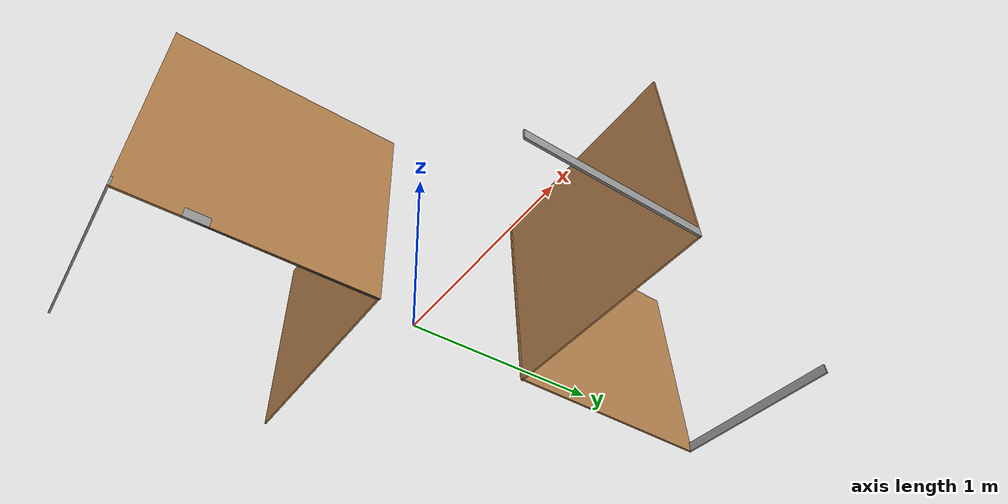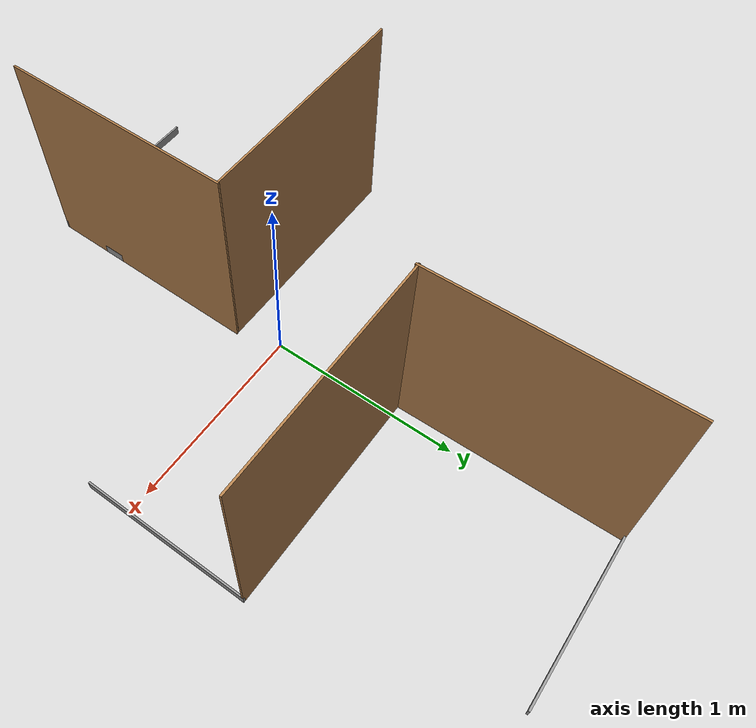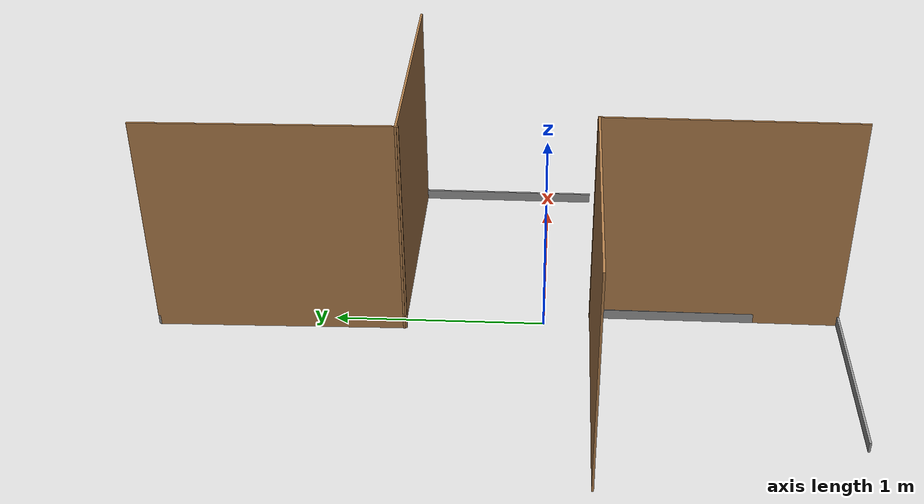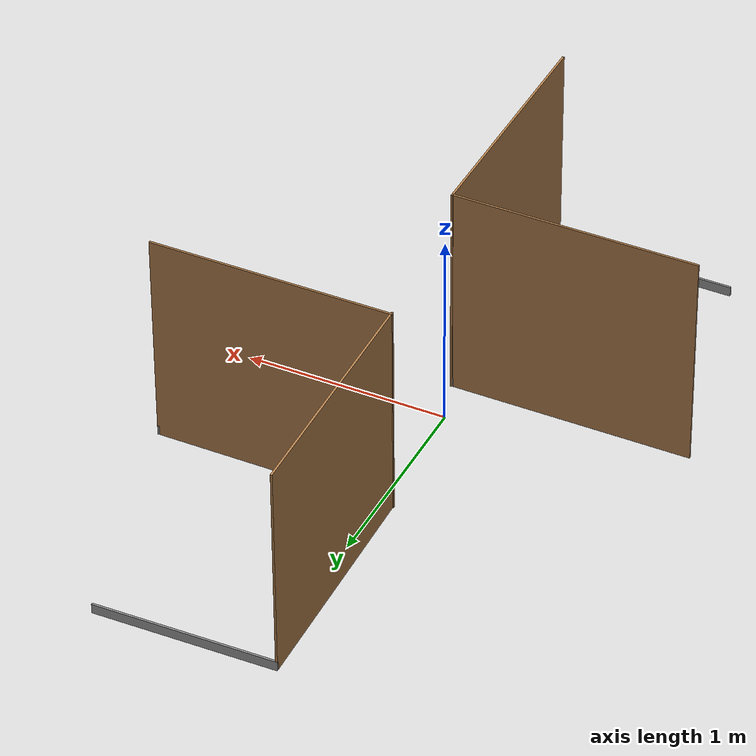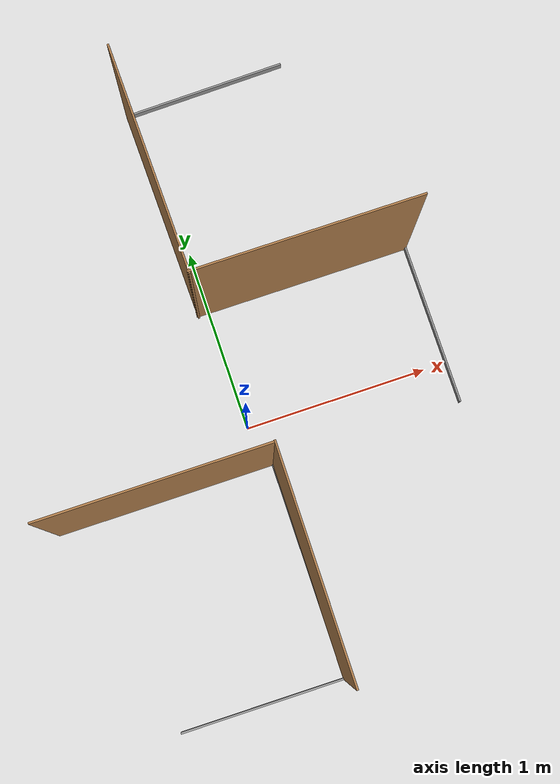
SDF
<?xml version='1.0'?>
<sdf version='1.6'>
  <model name='Arena_MAN1'>
    <model name='Paredes_personalizadas_finder'>
      <pose frame=''>0.529687 0.221886 0 0 -0 0</pose>
      <link name='Wall_0'>
        <collision name='Wall_0_Collision'>
          <geometry>
            <box>
              <size>1.195 0.01 1.1</size>
            </box>
          </geometry>
          <pose frame=''>0 0 0.55 0 -0 0</pose>
        </collision>
        <visual name='Wall_0_Visual'>
          <pose frame=''>0 0 0.55 0 -0 0</pose>
          <geometry>
            <box>
              <size>1.195 0.01 1.1</size>
            </box>
          </geometry>
          <material>
            <script>
              <uri>file://media/materials/scripts/gazebo.material</uri>
              <name>Gazebo/Wood</name>
            </script>
            <ambient>1 1 1 1</ambient>
          </material>
          <meta>
            <layer>0</layer>
          </meta>
        </visual>
        <pose frame=''>0 0.444 0 0 -0 3.14159</pose>
      </link>
      <link name='Wall_2'>
        <collision name='Wall_2_Collision'>
          <geometry>
            <box>
              <size>0.898 0.01 0.05</size>
            </box>
          </geometry>
          <pose frame=''>0 0 0.025 0 -0 0</pose>
        </collision>
        <visual name='Wall_2_Visual'>
          <pose frame=''>0 0 0.025 0 -0 0</pose>
          <geometry>
            <box>
              <size>0.898 0.01 0.05</size>
            </box>
          </geometry>
          <material>
            <script>
              <uri>file://media/materials/scripts/gazebo.material</uri>
              <name>Gazebo/Grey</name>
            </script>
            <ambient>1 1 1 1</ambient>
          </material>
          <meta>
            <layer>0</layer>
          </meta>
        </visual>
        <pose frame=''>0.5925 0 0 0 -0 -1.5708</pose>
      </link>
      <static>1</static>
    </model>
    <model name='Paredes_personalizadas_finder_0'>
      <pose frame=''>-0.37663 -0.812332 0 0 0 -1.57597</pose>
      <link name='Wall_0'>
        <collision name='Wall_0_Collision'>
          <geometry>
            <box>
              <size>1.195 0.01 1.1</size>
            </box>
          </geometry>
          <pose frame=''>0 0 0.55 0 -0 0</pose>
        </collision>
        <visual name='Wall_0_Visual'>
          <pose frame=''>0 0 0.55 0 -0 0</pose>
          <geometry>
            <box>
              <size>1.195 0.01 1.1</size>
            </box>
          </geometry>
          <material>
            <script>
              <uri>file://media/materials/scripts/gazebo.material</uri>
              <name>Gazebo/Wood</name>
            </script>
            <ambient>1 1 1 1</ambient>
          </material>
          <meta>
            <layer>0</layer>
          </meta>
        </visual>
        <pose frame=''>0 0.444 0 0 -0 3.14159</pose>
      </link>
      <link name='Wall_2'>
        <collision name='Wall_2_Collision'>
          <geometry>
            <box>
              <size>0.898 0.01 0.05</size>
            </box>
          </geometry>
          <pose frame=''>0 0 0.025 0 -0 0</pose>
        </collision>
        <visual name='Wall_2_Visual'>
          <pose frame=''>0 0 0.025 0 -0 0</pose>
          <geometry>
            <box>
              <size>0.898 0.01 0.05</size>
            </box>
          </geometry>
          <material>
            <script>
              <uri>file://media/materials/scripts/gazebo.material</uri>
              <name>Gazebo/Grey</name>
            </script>
            <ambient>1 1 1 1</ambient>
          </material>
          <meta>
            <layer>0</layer>
          </meta>
        </visual>
        <pose frame=''>0.5925 0 0 0 -0 -1.5708</pose>
      </link>
      <static>1</static>
    </model>
    <model name='Paredes_personalizadas_finder_1'>
      <pose frame=''>-0.526117 -0.66875 0 0 -0 0</pose>
      <link name='Wall_0'>
        <collision name='Wall_0_Collision'>
          <geometry>
            <box>
              <size>1.195 0.01 1.1</size>
            </box>
          </geometry>
          <pose frame=''>0 0 0.55 0 -0 0</pose>
        </collision>
        <visual name='Wall_0_Visual'>
          <pose frame=''>0 0 0.55 0 -0 0</pose>
          <geometry>
            <box>
              <size>1.195 0.01 1.1</size>
            </box>
          </geometry>
          <material>
            <script>
              <uri>file://media/materials/scripts/gazebo.material</uri>
              <name>Gazebo/Wood</name>
            </script>
            <ambient>1 1 1 1</ambient>
          </material>
          <meta>
            <layer>0</layer>
          </meta>
        </visual>
        <pose frame=''>0 0.444 0 0 -0 3.14159</pose>
      </link>
      <link name='Wall_2'>
        <collision name='Wall_2_Collision'>
          <geometry>
            <box>
              <size>0.898 0.01 0.05</size>
            </box>
          </geometry>
          <pose frame=''>0 0 0.025 0 -0 0</pose>
        </collision>
        <visual name='Wall_2_Visual'>
          <pose frame=''>0 0 0.025 0 -0 0</pose>
          <geometry>
            <box>
              <size>0.898 0.01 0.05</size>
            </box>
          </geometry>
          <material>
            <script>
              <uri>file://media/materials/scripts/gazebo.material</uri>
              <name>Gazebo/Grey</name>
            </script>
            <ambient>1 1 1 1</ambient>
          </material>
          <meta>
            <layer>0</layer>
          </meta>
        </visual>
        <pose frame=''>0.5925 0 0 0 -0 -1.5708</pose>
      </link>
      <static>1</static>
    </model>
    <model name='Paredes_personalizadas_finder_2'>
      <pose frame=''>0.373059 1.2592 0 0 -0 1.59141</pose>
      <link name='Wall_0'>
        <collision name='Wall_0_Collision'>
          <geometry>
            <box>
              <size>1.195 0.01 1.1</size>
            </box>
          </geometry>
          <pose frame=''>0 0 0.55 0 -0 0</pose>
        </collision>
        <visual name='Wall_0_Visual'>
          <pose frame=''>0 0 0.55 0 -0 0</pose>
          <geometry>
            <box>
              <size>1.195 0.01 1.1</size>
            </box>
          </geometry>
          <material>
            <script>
              <uri>file://media/materials/scripts/gazebo.material</uri>
              <name>Gazebo/Wood</name>
            </script>
            <ambient>1 1 1 1</ambient>
          </material>
          <meta>
            <layer>0</layer>
          </meta>
        </visual>
        <pose frame=''>0 0.444 0 0 -0 3.14159</pose>
      </link>
      <link name='Wall_2'>
        <collision name='Wall_2_Collision'>
          <geometry>
            <box>
              <size>0.898 0.01 0.05</size>
            </box>
          </geometry>
          <pose frame=''>0 0 0.025 0 -0 0</pose>
        </collision>
        <visual name='Wall_2_Visual'>
          <pose frame=''>0 0 0.025 0 -0 0</pose>
          <geometry>
            <box>
              <size>0.898 0.01 0.05</size>
            </box>
          </geometry>
          <material>
            <script>
              <uri>file://media/materials/scripts/gazebo.material</uri>
              <name>Gazebo/Grey</name>
            </script>
            <ambient>1 1 1 1</ambient>
          </material>
          <meta>
            <layer>0</layer>
          </meta>
        </visual>
        <pose frame=''>0.5925 0 0 0 -0 -1.5708</pose>
      </link>
      <static>1</static>
    </model>
    <static>0</static>
    <allow_auto_disable>1</allow_auto_disable>
  </model>
</sdf>
